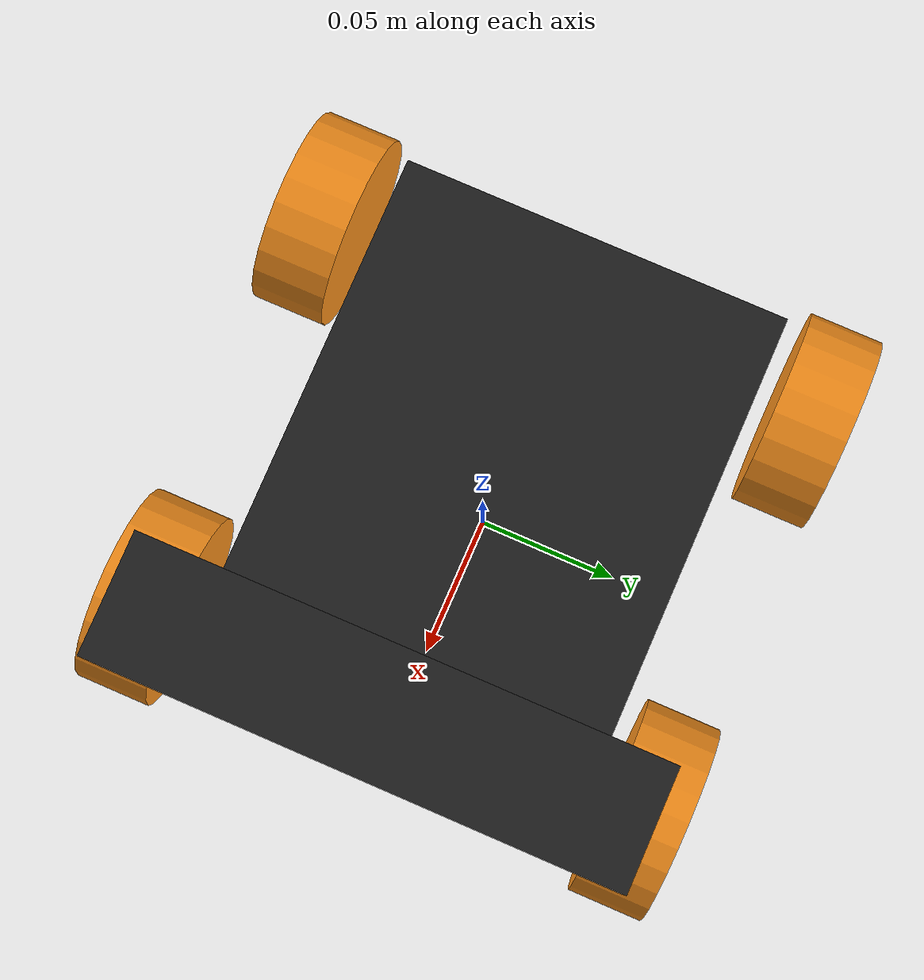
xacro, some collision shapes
<?xml version="1.0"?>

<robot name="my_robot" xmlns:xacro="http://ros.org/wiki/xacro">

   <!-- Define a number of dimensions using properties -->
   <!-- Camera offset from the base link-->
   <property name="camera_offset_x" value="0.08" />
   <property name="camera_offset_y" value="0" />
   <property name="camera_offset_z" value="0.055" />

   <!-- The following include files set up definitions of parts of the robot body -->
   <xacro:include filename="$(find mbx1_description)/urdf/materials.urdf.xacro" />
   <xacro:include filename="$(find mbx1_description)/urdf/my_robot/base.urdf.xacro" />
   <xacro:include filename="$(find mbx1_description)/urdf/my_robot/xtion.urdf.xacro" />

   <!-- Now we can start using the macros included above to define the actual robot -->

   <!-- Start with the base and wheels -->
   <base name="base" color="Black"/>

   <!-- Attach the camera -->
   <camera name="camera" parent="base" color="Black">
      <origin xyz="${camera_offset_x} ${camera_offset_y} ${camera_offset_z}" rpy="0 0 0" />
   </camera>

</robot>

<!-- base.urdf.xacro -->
<robot name="base" xmlns:xacro="http://ros.org/wiki/xacro">

  <!-- Define a number of dimensions using properties -->
  <property name="base_size_x" value="0.195" />
  <property name="base_size_y" value="0.140" />
  <property name="base_size_z" value="0.038" />
  <property name="wheel_length" value="0.026" />
  <property name="wheel_radius" value="0.0345" />
  <property name="wheel_offset_x" value="0.072" />
  <property name="wheel_offset_y" value="0.090" />
  <property name="wheel_offset_z" value="0" />

  <property name="PI" value="3.1415" />

  <!-- define a wheel -->
  <macro name="wheel" params="suffix parent reflect_x reflect_y color">
    <joint name="${parent}_${suffix}_wheel_joint" type="continuous">
      <axis xyz="0 0 1" />
      <limit effort="100" velocity="100"/>
      <safety_controller k_velocity="10" />
      <origin xyz="${reflect_x*wheel_offset_x} ${reflect_y*wheel_offset_y} ${wheel_offset_z}" rpy="${reflect_y*PI/2} 0 0" />
      <parent link="${parent}_link"/>
      <child link="${parent}_${suffix}_wheel_link"/>
    </joint>
    <link name="${parent}_${suffix}_wheel_link">
      <visual>
        <origin xyz="0 0 0" rpy="0 0 0" />
        <geometry>
          <cylinder radius="${wheel_radius}" length="${wheel_length}"/>
        </geometry>
        <material name="${color}" />
      </visual>
    </link>
  </macro>

  <!-- The base xacro macro -->
  <macro name="base" params="name color">
    <link name="${name}_link">
      <visual>
        <origin xyz="0 0 0" rpy="0 0 0" />
        <geometry>
          <box size="${base_size_x} ${base_size_y} ${base_size_z}" />
        </geometry>
        <material name="${color}" />
      </visual>
      <collision>
        <origin xyz="0 0 0" rpy="0 0 0" />
        <geometry>
          <box size="${base_size_x} ${wheel_offset_y*2 + wheel_length} ${base_size_z}" />
        </geometry>
      </collision>
    </link>
  </macro>

  <link name="base_footprint">
      <visual>
        <origin xyz="0 0 0" rpy="0 0 0" />
        <geometry>
          <box size="0.05 0.05 0.001" />
        </geometry>
        <material name="TransparentGreen" />
      </visual>
  </link>

  <joint name="base_joint" type="fixed">
    <origin xyz="0 0 ${wheel_radius-wheel_offset_z}" rpy="0 0 0" />
    <parent link="base_footprint"/>
    <child link="base_link" />
  </joint>

   <!-- Add the drive wheels -->
   <wheel parent="base" suffix="lf" reflect_x="1"  reflect_y="1"   color="Orange"/>
   <wheel parent="base" suffix="rf" reflect_x="1"  reflect_y="-1"  color="Orange"/>
   <wheel parent="base" suffix="lb" reflect_x="-1"  reflect_y="1"  color="Orange"/>
   <wheel parent="base" suffix="rb" reflect_x="-1"  reflect_y="-1"  color="Orange"/>

</robot>

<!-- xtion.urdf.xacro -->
<robot name="xtion" xmlns:xacro="http://ros.org/wiki/xacro">

   <!-- Define a number of dimensions using properties -->
   <!-- collision -->
   <property name="xtion_size_x" value="0.0420" />
   <property name="xtion_size_y" value="0.1810" />
   <property name="xtion_size_z" value="0.0480" />

   <property name="PI" value="3.1415" />
   <!-- stl mesh scaling -->
   <property name="camera_mesh_scale" value="0.0254" />

   <!-- Define a camera link for an Asus Xtion -->
   <macro name="camera" params="parent name color *origin">
      <joint name="${parent}_${name}_joint" type="fixed">
         <xacro:insert_block name="origin" />
         <parent link="${parent}_link"/>
         <child link="${name}_link"/>
      </joint>
      <link name="${name}_link">
         <visual>
            <origin xyz="0 0 -0.02" rpy="0 0 0"/>
            <geometry>
               <mesh filename="package://mbx1_description/meshes/xtion.stl" scale="${camera_mesh_scale} ${camera_mesh_scale} ${camera_mesh_scale}" />
            </geometry>
            <material name="${color}" />
         </visual>
         <collision>
            <origin xyz="0 0 0" rpy="0 0 0" />
            <geometry>
               <box size="${xtion_size_x} ${xtion_size_y} ${xtion_size_z}"/>
            </geometry>
         </collision>
      </link>

      <joint name="camera_depth_joint" type="fixed">
          <origin xyz="0 0.02 0" rpy="0 0 0" />
          <parent link="${name}_link" />
          <child link="camera_depth_frame" />
      </joint>

      <link name="camera_depth_frame">
      <inertial>
         <mass value="0.000001" />
         <origin xyz="0 0 0" />
         <inertia ixx="0.0001" ixy="0.0" ixz="0.0"
            iyy="0.0001" iyz="0.0"
            izz="0.0001" />
         </inertial>
      </link>

      <joint name="camera_depth_optical_joint" type="fixed">
         <origin xyz="0 0 0" rpy="${-PI/2} 0 ${-PI/2}" />
         <parent link="camera_depth_frame" />
         <child link="camera_depth_optical_frame" />
      </joint>

      <link name="camera_depth_optical_frame">
         <inertial>
            <mass value="0.000001" />
            <origin xyz="0 0 0" />
            <inertia ixx="0.0001" ixy="0.0" ixz="0.0"
               iyy="0.0001" iyz="0.0"
               izz="0.0001" />
         </inertial>
      </link>

      <joint name="camera_rgb_joint" type="fixed">
         <origin xyz="0 0.045 0" rpy="0 0 0" />
         <parent link="${name}_link" />
         <child link="camera_rgb_frame" />
      </joint>

      <link name="camera_rgb_frame">
         <inertial>
         <mass value="0.000001" />
         <origin xyz="0 0 0" />
         <inertia ixx="0.0001" ixy="0.0" ixz="0.0"
            iyy="0.0001" iyz="0.0"
            izz="0.0001" />
         </inertial>
      </link>

      <joint name="camera_rgb_optical_joint" type="fixed">
         <origin xyz="0 0 0" rpy="${-PI/2} 0 ${-PI/2}" />
         <parent link="camera_rgb_frame" />
         <child link="camera_rgb_optical_frame" />
      </joint>

      <link name="camera_rgb_optical_frame">
         <inertial>
            <mass value="0.000001" />
            <origin xyz="0 0 0" />
            <inertia ixx="0.0001" ixy="0.0" ixz="0.0"
               iyy="0.0001" iyz="0.0"
               izz="0.0001" />
         </inertial>
      </link>

   </macro>

</robot>
